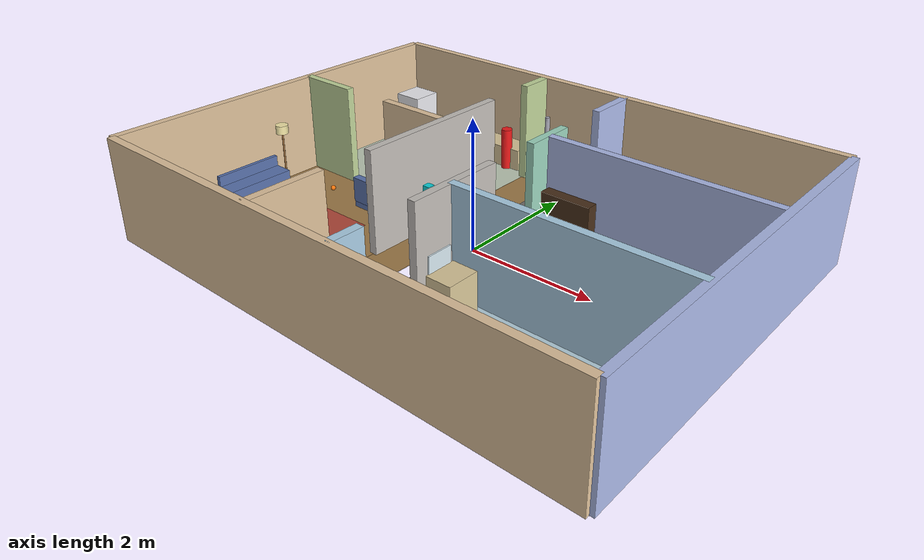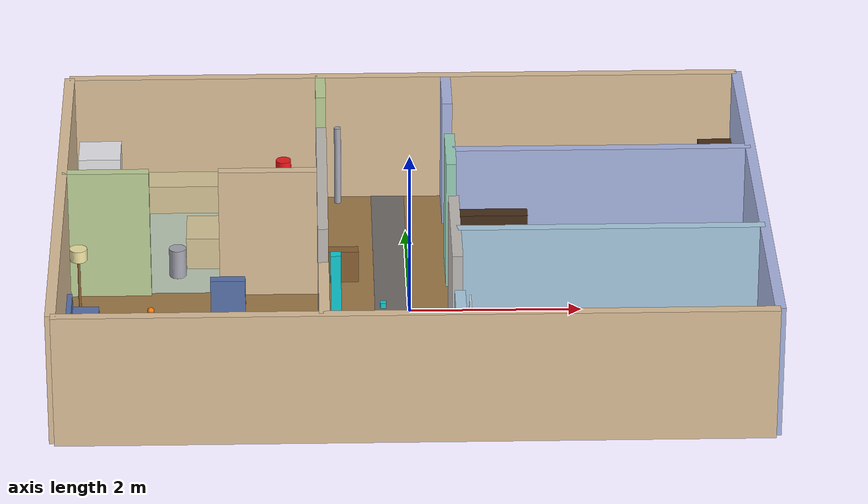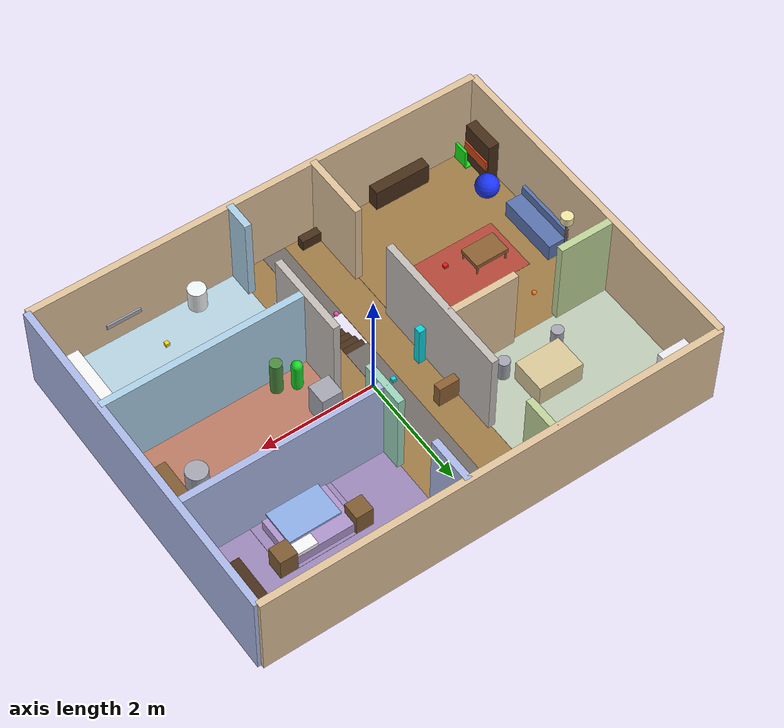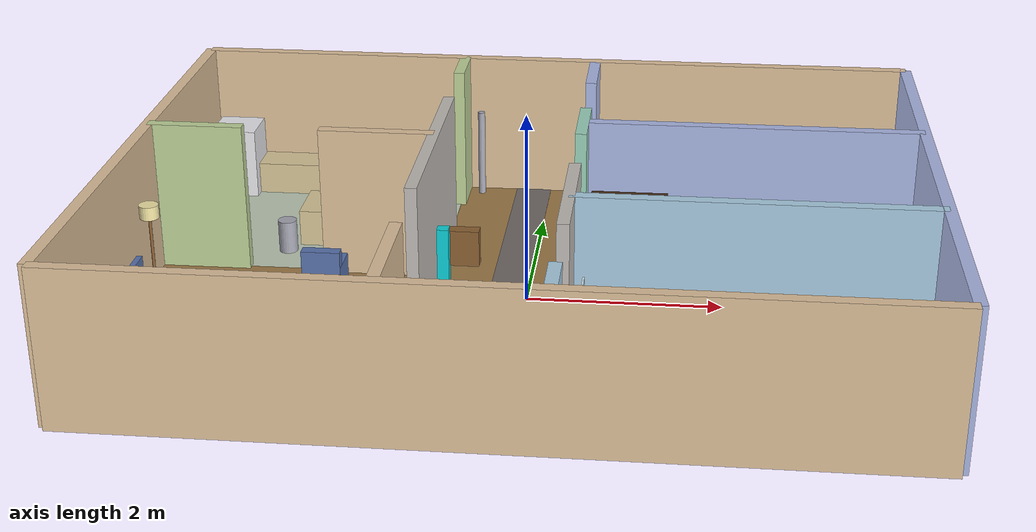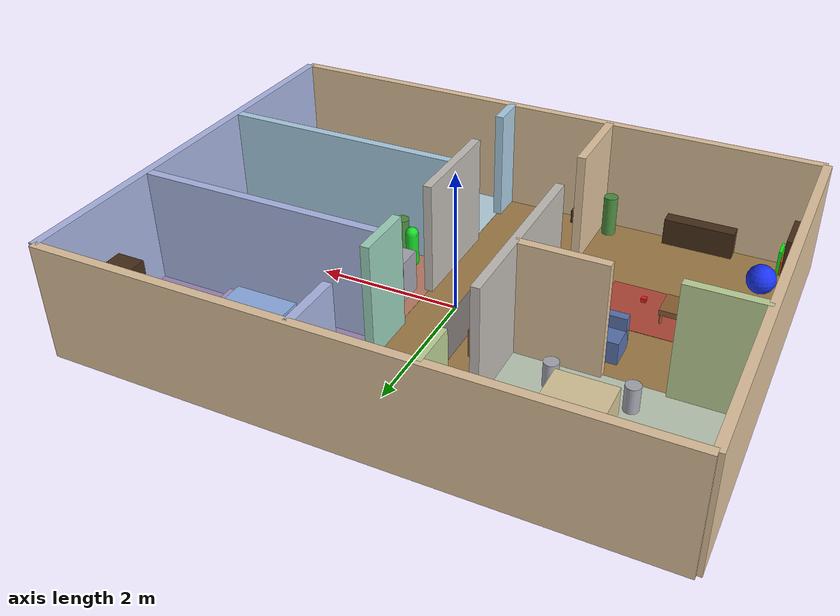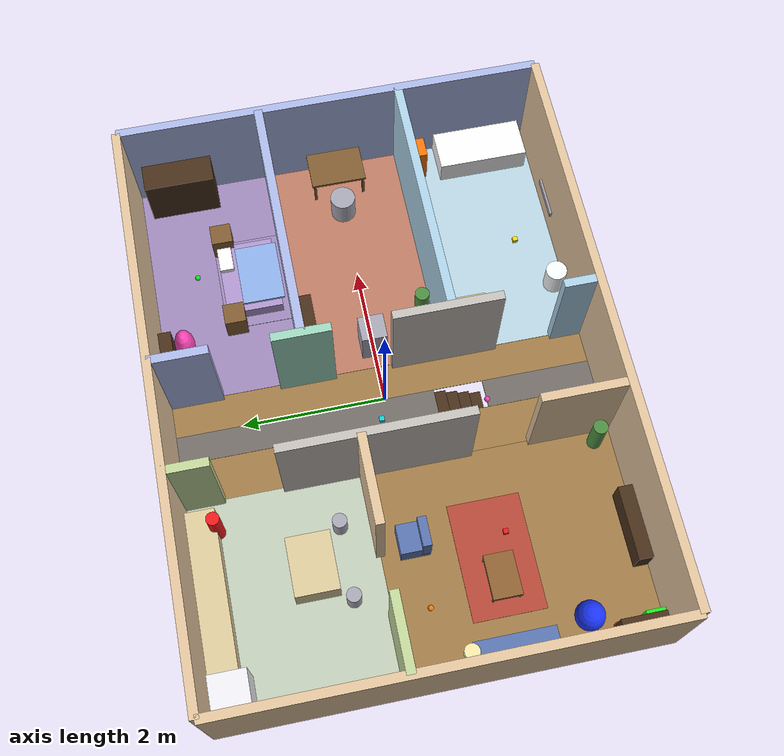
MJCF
<mujoco model="apartment">

  <asset>
    <texture type="2d" name="ft_kitchen"  builtin="checker" mark="random" random="0.55" rgb1="0.90 0.92 0.86" rgb2="0.58 0.66 0.56" markrgb="0.18 0.24 0.18" width="1024" height="1024"/>
    <texture type="2d" name="ft_living"   builtin="checker" mark="cross"                rgb1="0.76 0.60 0.36" rgb2="0.48 0.36 0.20" markrgb="0.18 0.12 0.06" width="1024" height="1024"/>
    <texture type="2d" name="ft_corridor" builtin="checker" mark="edge"                 rgb1="0.55 0.52 0.50" rgb2="0.34 0.32 0.31" markrgb="0.90 0.80 0.10" width="1024" height="1024"/>
    <texture type="2d" name="ft_bedroom"  builtin="checker" mark="random" random="0.6"  rgb1="0.72 0.64 0.82" rgb2="0.50 0.42 0.62" markrgb="0.30 0.20 0.36" width="1024" height="1024"/>
    <texture type="2d" name="ft_office"   builtin="checker" mark="cross"                rgb1="0.84 0.58 0.48" rgb2="0.62 0.38 0.30" markrgb="0.30 0.14 0.10" width="1024" height="1024"/>
    <texture type="2d" name="ft_bath"     builtin="checker" mark="edge"                 rgb1="0.84 0.92 0.95" rgb2="0.58 0.72 0.80" markrgb="0.18 0.30 0.40" width="1024" height="1024"/>
    <material name="floor_kitchen"  texture="ft_kitchen"  texrepeat="6 6" reflectance="0.05"/>
    <material name="floor_living"   texture="ft_living"   texrepeat="3 3" reflectance="0.04"/>
    <material name="floor_corridor" texture="ft_corridor" texrepeat="9 3" reflectance="0.03"/>
    <material name="floor_bedroom"  texture="ft_bedroom"  texrepeat="2 2" reflectance="0.02"/>
    <material name="floor_office"   texture="ft_office"   texrepeat="4 4" reflectance="0.04"/>
    <material name="floor_bath"     texture="ft_bath"     texrepeat="7 7" reflectance="0.10"/>
    <material name="floor_main"     texture="ft_living"   texrepeat="3 3" reflectance="0.04"/>
    <material name="floor_carpet"   texture="ft_bedroom"  texrepeat="2 2" reflectance="0.01"/>

    <!-- Walls — one structurally-unique texture per room too, so a wall in the kitchen never matches
         a wall in the office. -->
    <texture type="2d" name="wt_kitchen"  builtin="checker" mark="random" random="0.55" rgb1="0.86 0.92 0.70" rgb2="0.64 0.74 0.50" markrgb="0.24 0.34 0.14" width="1024" height="1024"/>
    <texture type="2d" name="wt_living"   builtin="checker" mark="cross"                rgb1="0.95 0.86 0.72" rgb2="0.80 0.66 0.50" markrgb="0.46 0.30 0.16" width="1024" height="1024"/>
    <texture type="2d" name="wt_corridor" builtin="checker" mark="edge"                 rgb1="0.88 0.86 0.84" rgb2="0.64 0.62 0.60" markrgb="0.18 0.18 0.18" width="1024" height="1024"/>
    <texture type="2d" name="wt_bedroom"  builtin="checker" mark="random" random="0.6"  rgb1="0.78 0.82 0.96" rgb2="0.56 0.62 0.84" markrgb="0.20 0.26 0.46" width="1024" height="1024"/>
    <texture type="2d" name="wt_office"   builtin="checker" mark="cross"                rgb1="0.72 0.92 0.84" rgb2="0.50 0.74 0.64" markrgb="0.12 0.34 0.26" width="1024" height="1024"/>
    <texture type="2d" name="wt_bath"     builtin="checker" mark="edge"                 rgb1="0.78 0.90 0.96" rgb2="0.56 0.72 0.84" markrgb="0.18 0.34 0.42" width="1024" height="1024"/>
    <material name="wall_kitchen"  texture="wt_kitchen"  texrepeat="3 1" reflectance="0.02"/>
    <material name="wall_living"   texture="wt_living"   texrepeat="2 1" reflectance="0.02"/>
    <material name="wall_corridor" texture="wt_corridor" texrepeat="2 1" reflectance="0.02"/>
    <material name="wall_bedroom"  texture="wt_bedroom"  texrepeat="2 1" reflectance="0.02"/>
    <material name="wall_office"   texture="wt_office"   texrepeat="3 1" reflectance="0.02"/>
    <material name="wall_bath"     texture="wt_bath"     texrepeat="2 1" reflectance="0.05"/>
    <!-- back-compat aliases for outer/shared walls that referenced the old names -->
    <material name="wall_warm"     texture="wt_living"   texrepeat="2 1" reflectance="0.02"/>
    <material name="wall_cool"     texture="wt_bedroom"  texrepeat="2 1" reflectance="0.02"/>

    <material name="sofa"          rgba="0.35 0.45 0.68 1"/>
    <material name="table_wood"    rgba="0.55 0.38 0.20 1"/>
    <material name="bed_mat"       rgba="0.68 0.58 0.80 1"/>
    <material name="bookshelf_mat" rgba="0.28 0.18 0.10 1"/>
    <material name="desk_mat"      rgba="0.50 0.36 0.20 1"/>
    <material name="rug_mat"       rgba="0.70 0.28 0.22 1"/>
    <material name="lamp_mat"      rgba="0.95 0.90 0.65 1"/>
    <material name="dock_mat"      rgba="0.10 0.90 0.10 1"/>

    <material name="counter_mat"   rgba="0.85 0.78 0.60 1"/>
    <material name="fridge_mat"    rgba="0.92 0.92 0.94 1"/>
    <material name="tub_mat"       rgba="0.96 0.96 0.96 1"/>
    <material name="toilet_mat"    rgba="0.94 0.96 0.96 1"/>
    <material name="metal_mat"     rgba="0.65 0.65 0.70 1"/>

    <material name="obj_red"       rgba="0.92 0.10 0.10 1"/>
    <material name="obj_blue"      rgba="0.10 0.20 0.95 1"/>
    <material name="obj_yellow"    rgba="0.95 0.85 0.05 1"/>
    <material name="obj_cyan"      rgba="0.05 0.82 0.85 1"/>
    <material name="ball_orange"   rgba="0.96 0.46 0.04 1"/>
    <material name="ball_green"    rgba="0.10 0.84 0.16 1"/>
    <material name="ball_pink"     rgba="0.96 0.26 0.70 1"/>
  </asset>

  <worldbody>

    <!-- ── Floor (box-tiled, with a staircase hole in the corridor) ────── -->
    <!-- Hole spans x ∈ [-0.40, 0.0], y ∈ [-1.40, -0.70] — corridor mid-south. -->
    <geom name="floor_w" type="box" size="1.80 3.00 0.005"
          pos="-2.20 0.00 -0.005" material="floor_main" contype="1" conaffinity="1"/>
    <geom name="floor_e" type="box" size="2.00 3.00 0.005"
          pos=" 2.00 0.00 -0.005" material="floor_main" contype="1" conaffinity="1"/>
    <geom name="floor_corridor_s" type="box" size="0.20 0.80 0.005"
          pos="-0.20 -2.20 -0.005" material="floor_main" contype="1" conaffinity="1"/>
    <geom name="floor_corridor_n" type="box" size="0.20 1.85 0.005"
          pos="-0.20  1.15 -0.005" material="floor_main" contype="1" conaffinity="1"/>

    <!-- ── Staircase (4 steps, descending 10 cm each, going south) ───── -->
    <!-- Top-step y is closest to the office doorway; deepest step is at south end. -->
    <geom name="stair_1" type="box" size="0.20 0.0875 0.10"
          pos="-0.20 -0.7875 -0.20" material="bookshelf_mat" contype="1" conaffinity="1"/>
    <geom name="stair_2" type="box" size="0.20 0.0875 0.10"
          pos="-0.20 -0.9625 -0.30" material="bookshelf_mat" contype="1" conaffinity="1"/>
    <geom name="stair_3" type="box" size="0.20 0.0875 0.10"
          pos="-0.20 -1.1375 -0.40" material="bookshelf_mat" contype="1" conaffinity="1"/>
    <geom name="stair_4" type="box" size="0.20 0.0875 0.10"
          pos="-0.20 -1.3125 -0.50" material="bookshelf_mat" contype="1" conaffinity="1"/>
    <!-- Per-room floor overlays (visual only) — each room's floor is its OWN texture, so the
         floor-dominated low-camera view is unambiguous room to room. -->
    <geom name="floor_kitchen" type="box" size="1.50 1.25 0.002"
          pos="-2.50 1.75 0.002" material="floor_kitchen" contype="0" conaffinity="0"/>
    <geom name="floor_living" type="box" size="1.50 1.75 0.002"
          pos="-2.50 -1.25 0.002" material="floor_living" contype="0" conaffinity="0"/>
    <geom name="floor_office" type="box" size="1.75 1.00 0.002"
          pos="2.25 0.00 0.002" material="floor_office" contype="0" conaffinity="0"/>
    <geom name="floor_bedroom" type="box" size="1.75 1.00 0.002"
          pos="2.25 2.00 0.002" material="floor_bedroom" contype="0" conaffinity="0"/>
    <geom name="floor_bath" type="box" size="1.75 1.00 0.002"
          pos="2.25 -2.00 0.002" material="floor_bath" contype="0" conaffinity="0"/>
    <!-- Corridor floor: the two strips that flank the staircase hole (avoids covering it). -->
    <geom name="floor_cor_n" type="box" size="0.20 1.85 0.002"
          pos="-0.20 1.15 0.002" material="floor_corridor" contype="0" conaffinity="0"/>
    <geom name="floor_cor_s" type="box" size="0.20 0.80 0.002"
          pos="-0.20 -2.20 0.002" material="floor_corridor" contype="0" conaffinity="0"/>
    <!-- Rugs as local accents on top. -->
    <geom name="rug_living" type="box" size="0.80 0.50 0.004"
          pos="-2.50 -1.00 0.005" material="rug_mat" contype="0" conaffinity="0"/>
    <geom name="rug_bedroom" type="box" size="0.70 0.50 0.004"
          pos="2.20 1.50 0.005" material="floor_carpet" contype="0" conaffinity="0"/>

    <!-- ── Outer walls (6×4 m bounding box at ±4 / ±3) ─────────────────── -->
    <geom name="wall_south" type="box" size="4.00 0.06 0.80"
          pos="0 -3.00 0.80" material="wall_warm" contype="1" conaffinity="1"/>
    <geom name="wall_north" type="box" size="4.00 0.06 0.80"
          pos="0 3.00 0.80" material="wall_warm" contype="1" conaffinity="1"/>
    <geom name="wall_west"  type="box" size="0.06 3.00 0.80"
          pos="-4.00 0 0.80" material="wall_warm" contype="1" conaffinity="1"/>
    <geom name="wall_east"  type="box" size="0.06 3.00 0.80"
          pos="4.00 0 0.80" material="wall_cool" contype="1" conaffinity="1"/>

    <!-- ── Interior wall A: kitchen ↔ living (y=+0.5, x ∈ [-4, -1]) ────── -->
    <!-- Doorway at x ∈ [-3.0, -2.2] (0.8 m wide, off-centre to the west). -->
    <geom name="wA_w" type="box" size="0.50 0.06 0.80"
          pos="-3.50 0.50 0.80" material="wall_kitchen" contype="1" conaffinity="1"/>
    <geom name="wA_e" type="box" size="0.60 0.06 0.80"
          pos="-1.60 0.50 0.80" material="wall_living" contype="1" conaffinity="1"/>

    <!-- ── Interior wall B: corridor west wall (x=-1, y ∈ [-3, +3]) ─────── -->
    <!-- Two doorways, deliberately at different y: -->
    <!--   Living → corridor at y ∈ [-1.8, -1.0]  -->
    <!--   Kitchen → corridor at y ∈ [+1.6, +2.4] -->
    <geom name="wB_s" type="box" size="0.06 0.60 0.80"
          pos="-1.00 -2.40 0.80" material="wall_living" contype="1" conaffinity="1"/>
    <geom name="wB_m" type="box" size="0.06 1.30 0.80"
          pos="-1.00 0.30 0.80" material="wall_corridor" contype="1" conaffinity="1"/>
    <geom name="wB_n" type="box" size="0.06 0.30 0.80"
          pos="-1.00 2.70 0.80" material="wall_kitchen" contype="1" conaffinity="1"/>

    <!-- ── Interior wall C: corridor east wall (x=+0.5, y ∈ [-3, +3]) ──── -->
    <!-- Three doorways, all at distinct y: -->
    <!--   Bathroom at y ∈ [-2.5, -1.7] (close to south)  -->
    <!--   Office   at y ∈ [-0.2, +0.6] (slightly north of centre) -->
    <!--   Bedroom  at y ∈ [+1.4, +2.2]                 -->
    <geom name="wC_s" type="box" size="0.06 0.25 0.80"
          pos="0.50 -2.75 0.80" material="wall_bath" contype="1" conaffinity="1"/>
    <geom name="wC_m1" type="box" size="0.06 0.75 0.80"
          pos="0.50 -0.95 0.80" material="wall_corridor" contype="1" conaffinity="1"/>
    <geom name="wC_m2" type="box" size="0.06 0.40 0.80"
          pos="0.50 1.00 0.80" material="wall_office" contype="1" conaffinity="1"/>
    <geom name="wC_n" type="box" size="0.06 0.40 0.80"
          pos="0.50 2.60 0.80" material="wall_bedroom" contype="1" conaffinity="1"/>

    <!-- ── Interior wall F: bedroom ↔ office (y=+1, x ∈ [+0.5, +4]) ────── -->
    <geom name="wF" type="box" size="1.75 0.06 0.80"
          pos="2.25 1.00 0.80" material="wall_bedroom" contype="1" conaffinity="1"/>

    <!-- ── Interior wall G: office ↔ bathroom (y=-1, x ∈ [+0.5, +4]) ───── -->
    <geom name="wG" type="box" size="1.75 0.06 0.80"
          pos="2.25 -1.00 0.80" material="wall_bath" contype="1" conaffinity="1"/>

    <!-- ── Kitchen furniture (NW) ──────────────────────────────────────── -->
    <!-- Counter along north wall -->
    <geom name="kit_counter" type="box" size="1.30 0.20 0.18"
          pos="-2.50 2.74 0.18" material="counter_mat" contype="1" conaffinity="1"/>
    <!-- Fridge (tall — visible from far) -->
    <geom name="kit_fridge" type="box" size="0.25 0.25 0.40"
          pos="-3.65 2.65 0.40" material="fridge_mat" contype="1" conaffinity="1"/>
    <!-- Kitchen island (free-standing) -->
    <geom name="kit_island" type="box" size="0.40 0.30 0.20"
          pos="-2.20 1.40 0.20" material="counter_mat" contype="1" conaffinity="1"/>
    <!-- Stools at the island -->
    <geom name="kit_stool1" type="cylinder" size="0.10 0.18"
          pos="-2.70 0.95 0.18" material="metal_mat" contype="1" conaffinity="1"/>
    <geom name="kit_stool2" type="cylinder" size="0.10 0.18"
          pos="-1.70 0.95 0.18" material="metal_mat" contype="1" conaffinity="1"/>

    <!-- ── Living-room furniture (SW) ──────────────────────────────────── -->
    <!-- Sofa against west wall -->
    <geom name="liv_sofa_seat" type="box" size="0.20 0.55 0.16"
          pos="-3.78 -0.95 0.16" material="sofa" contype="1" conaffinity="1"/>
    <geom name="liv_sofa_back" type="box" size="0.06 0.55 0.22"
          pos="-3.94 -0.95 0.27" material="sofa" contype="1" conaffinity="1"/>
    <!-- Coffee table -->
    <geom name="liv_table" type="box" size="0.30 0.20 0.04"
          pos="-2.80 -1.00 0.18" material="table_wood" contype="1" conaffinity="1"/>
    <geom name="liv_table_l1" type="cylinder" size="0.018 0.08"
          pos="-3.07 -1.18 0.08" material="table_wood" contype="1" conaffinity="1"/>
    <geom name="liv_table_l2" type="cylinder" size="0.018 0.08"
          pos="-2.53 -1.18 0.08" material="table_wood" contype="1" conaffinity="1"/>
    <geom name="liv_table_l3" type="cylinder" size="0.018 0.08"
          pos="-3.07 -0.82 0.08" material="table_wood" contype="1" conaffinity="1"/>
    <geom name="liv_table_l4" type="cylinder" size="0.018 0.08"
          pos="-2.53 -0.82 0.08" material="table_wood" contype="1" conaffinity="1"/>
    <!-- TV stand against south wall -->
    <geom name="liv_tv_stand" type="box" size="0.50 0.10 0.20"
          pos="-2.50 -2.84 0.20" material="bookshelf_mat" contype="1" conaffinity="1"/>
    <!-- Tall bookshelf in SW corner -->
    <geom name="liv_shelf" type="box" size="0.10 0.30 0.40"
          pos="-3.85 -2.50 0.40" material="bookshelf_mat" contype="1" conaffinity="1"/>
    <geom name="liv_books" type="box" size="0.06 0.28 0.10"
          pos="-3.78 -2.50 0.36" rgba="0.80 0.28 0.10 1" contype="0" conaffinity="0"/>
    <!-- Floor lamp by sofa -->
    <geom name="liv_lamp_pole" type="cylinder" size="0.015 0.45"
          pos="-3.80 -0.30 0.45" material="table_wood" contype="1" conaffinity="1"/>
    <geom name="liv_lamp_shade" type="cylinder" size="0.10 0.07"
          pos="-3.80 -0.30 0.95" material="lamp_mat" contype="0" conaffinity="0"/>
    <!-- Armchair in middle -->
    <geom name="liv_chair_seat" type="box" size="0.20 0.20 0.16"
          pos="-2.10 0.05 0.16" material="sofa" contype="1" conaffinity="1"/>
    <geom name="liv_chair_back" type="box" size="0.20 0.06 0.20"
          pos="-2.10 -0.10 0.30" material="sofa" contype="1" conaffinity="1"/>
    <!-- Plant by corridor entrance -->
    <geom name="liv_plant" type="cylinder" size="0.10 0.30"
          pos="-1.20 -2.70 0.30" rgba="0.30 0.55 0.25 1" contype="1" conaffinity="1"/>

    <!-- ── Corridor furniture ──────────────────────────────────────────── -->
    <!-- Side console -->
    <geom name="cor_console" type="box" size="0.20 0.07 0.20"
          pos="-0.78 0.80 0.20" material="table_wood" contype="1" conaffinity="1"/>
    <!-- Coat rack (cylinder) -->
    <geom name="cor_coat_rack" type="cylinder" size="0.04 0.50"
          pos="-0.80 2.80 0.50" material="metal_mat" contype="1" conaffinity="1"/>
    <!-- Shoe rack -->
    <geom name="cor_shoes" type="box" size="0.20 0.07 0.10"
          pos="-0.80 -2.80 0.10" material="bookshelf_mat" contype="1" conaffinity="1"/>

    <!-- ── Bedroom furniture (NE) ──────────────────────────────────────── -->
    <!-- Bed -->
    <geom name="bed_base" type="box" size="0.55 0.40 0.10"
          pos="2.20 1.55 0.10" material="bed_mat" contype="1" conaffinity="1"/>
    <geom name="bed_pillow" type="box" size="0.18 0.10 0.04"
          pos="2.50 1.85 0.23" rgba="0.96 0.96 0.96 1" contype="0" conaffinity="0"/>
    <geom name="bed_blanket" type="box" size="0.45 0.30 0.02"
          pos="2.20 1.40 0.22" rgba="0.55 0.68 0.90 1" contype="0" conaffinity="0"/>
    <!-- Nightstands -->
    <geom name="bed_ns_l" type="box" size="0.15 0.15 0.20"
          pos="1.55 1.85 0.20" material="desk_mat" contype="1" conaffinity="1"/>
    <geom name="bed_ns_r" type="box" size="0.15 0.15 0.20"
          pos="2.85 1.85 0.20" material="desk_mat" contype="1" conaffinity="1"/>
    <!-- Wardrobe against east wall -->
    <geom name="bed_wardrobe" type="box" size="0.20 0.50 0.40"
          pos="3.74 2.30 0.40" material="bookshelf_mat" contype="1" conaffinity="1"/>
    <!-- Dresser against north wall -->
    <geom name="bed_dresser" type="box" size="0.30 0.10 0.24"
          pos="1.10 2.86 0.24" material="bookshelf_mat" contype="1" conaffinity="1"/>

    <!-- ── Office furniture (E centre) ─────────────────────────────────── -->
    <!-- Desk against east wall -->
    <geom name="off_desk" type="box" size="0.28 0.40 0.02"
          pos="3.66 0.00 0.36" material="desk_mat" contype="1" conaffinity="1"/>
    <geom name="off_desk_l1" type="box" size="0.018 0.018 0.17"
          pos="3.40 -0.36 0.17" material="desk_mat" contype="1" conaffinity="1"/>
    <geom name="off_desk_l2" type="box" size="0.018 0.018 0.17"
          pos="3.92 -0.36 0.17" material="desk_mat" contype="1" conaffinity="1"/>
    <geom name="off_desk_l3" type="box" size="0.018 0.018 0.17"
          pos="3.40  0.36 0.17" material="desk_mat" contype="1" conaffinity="1"/>
    <geom name="off_desk_l4" type="box" size="0.018 0.018 0.17"
          pos="3.92  0.36 0.17" material="desk_mat" contype="1" conaffinity="1"/>
    <!-- Office chair (cylinder, swivel-style) -->
    <geom name="off_chair" type="cylinder" size="0.18 0.20"
          pos="3.10 0.00 0.20" material="metal_mat" contype="1" conaffinity="1"/>
    <!-- Bookshelf against bedroom-wall side (y=+1) -->
    <geom name="off_shelf" type="box" size="0.40 0.10 0.42"
          pos="1.00 0.86 0.42" material="bookshelf_mat" contype="1" conaffinity="1"/>
    <!-- Filing cabinet -->
    <geom name="off_cabinet" type="box" size="0.18 0.18 0.30"
          pos="0.85 0.00 0.30" material="metal_mat" contype="1" conaffinity="1"/>
    <!-- Plant -->
    <geom name="off_plant" type="cylinder" size="0.10 0.32"
          pos="1.20 -0.78 0.32" rgba="0.30 0.55 0.25 1" contype="1" conaffinity="1"/>

    <!-- ── Bathroom furniture (SE) ─────────────────────────────────────── -->
    <!-- Bathtub against south + east walls -->
    <geom name="bth_tub" type="box" size="0.30 0.65 0.18"
          pos="3.65 -2.20 0.18" material="tub_mat" contype="1" conaffinity="1"/>
    <!-- Vanity / sink against west side (corridor wall side) -->
    <geom name="bth_vanity" type="box" size="0.20 0.25 0.30"
          pos="0.86 -1.40 0.30" material="counter_mat" contype="1" conaffinity="1"/>
    <geom name="bth_mirror" type="box" size="0.01 0.20 0.20"
          pos="0.66 -1.40 0.65" rgba="0.85 0.92 0.95 1" contype="0" conaffinity="0"/>
    <!-- Toilet -->
    <geom name="bth_toilet" type="cylinder" size="0.15 0.20"
          pos="1.30 -2.78 0.20" material="toilet_mat" contype="1" conaffinity="1"/>
    <!-- Towel rail against south wall -->
    <geom name="bth_rail" type="box" size="0.30 0.02 0.04"
          pos="2.50 -2.93 0.40" material="metal_mat" contype="0" conaffinity="0"/>

    <!-- ── Charging dock (SW corner of living room) ────────────────────── -->
    <body name="dock" pos="-3.80 -2.78 0">
      <geom name="dock_base"  type="box" size="0.16 0.16 0.012"
            pos="0 0 0.012" material="dock_mat" contype="0" conaffinity="0"/>
      <geom name="dock_panel" type="box" size="0.022 0.13 0.17"
            pos="0.14 0 0.18" material="dock_mat" contype="0" conaffinity="0"/>
      <geom name="dock_s1" type="box" size="0.005 0.11 0.012"
            pos="0.125 0 0.09" rgba="1 1 1 1" contype="0" conaffinity="0"/>
      <geom name="dock_s2" type="box" size="0.005 0.11 0.012"
            pos="0.125 0 0.19" rgba="1 1 1 1" contype="0" conaffinity="0"/>
      <site name="dock_site" pos="0 0 0.02" size="0.01"/>
    </body>

    <geom name="lm_kitchen"  type="cylinder"  size="0.09 0.35" pos="-1.45 2.55 0.35"
          material="obj_red"    contype="0" conaffinity="0"/>
    <geom name="lm_living"   type="sphere"    size="0.20"      pos="-3.55 -1.95 0.30"
          material="obj_blue"   contype="0" conaffinity="0"/>
    <geom name="lm_corridor" type="box"       size="0.06 0.06 0.38" pos="-0.85 0.00 0.38"
          material="obj_cyan"   contype="0" conaffinity="0"/>
    <geom name="lm_bedroom"  type="ellipsoid" size="0.18 0.14 0.30" pos="1.25 2.60 0.30"
          material="ball_pink"  contype="0" conaffinity="0"/>
    <geom name="lm_office"   type="capsule"   size="0.09 0.22" pos="0.95 -0.60 0.35"
          material="ball_green" contype="0" conaffinity="0"/>
    <geom name="lm_bath"     type="box"       size="0.15 0.10 0.30" pos="3.60 -1.25 0.30"
          material="ball_orange" contype="0" conaffinity="0"/>

    <!-- ── Interactable objects scattered across rooms ──────────────────── -->
    <body name="obj_0" pos="-2.20 -1.20 0">
      <freejoint/>
      <geom name="obj_0_geom" type="box" size="0.035 0.035 0.035"
            pos="0 0 0.035" material="obj_red" contype="1" conaffinity="1" mass="0.05"/>
    </body>
    <body name="obj_1" pos="-2.50 1.40 0">
      <freejoint/>
      <geom name="obj_1_geom" type="box" size="0.035 0.035 0.035"
            pos="0 0 0.035" material="obj_blue" contype="1" conaffinity="1" mass="0.05"/>
    </body>
    <body name="obj_2" pos="2.10 -2.40 0">
      <freejoint/>
      <geom name="obj_2_geom" type="box" size="0.035 0.035 0.035"
            pos="0 0 0.035" material="obj_yellow" contype="1" conaffinity="1" mass="0.05"/>
    </body>
    <body name="obj_3" pos="-0.30 0.10 0">
      <freejoint/>
      <geom name="obj_3_geom" type="box" size="0.035 0.035 0.035"
            pos="0 0 0.035" material="obj_cyan" contype="1" conaffinity="1" mass="0.05"/>
    </body>

    <body name="ball_0" pos="-3.00 0.00 0">
      <freejoint/>
      <geom name="ball_0_geom" type="sphere" size="0.040"
            pos="0 0 0.040" material="ball_orange" contype="1" conaffinity="1" mass="0.025"/>
    </body>
    <body name="ball_1" pos="2.40 2.30 0">
      <freejoint/>
      <geom name="ball_1_geom" type="sphere" size="0.040"
            pos="0 0 0.040" material="ball_green" contype="1" conaffinity="1" mass="0.025"/>
    </body>
    <body name="ball_2" pos="-0.30 -1.40 0">
      <freejoint/>
      <geom name="ball_2_geom" type="sphere" size="0.040"
            pos="0 0 0.040" material="ball_pink" contype="1" conaffinity="1" mass="0.025"/>
    </body>

  </worldbody>
</mujoco>
